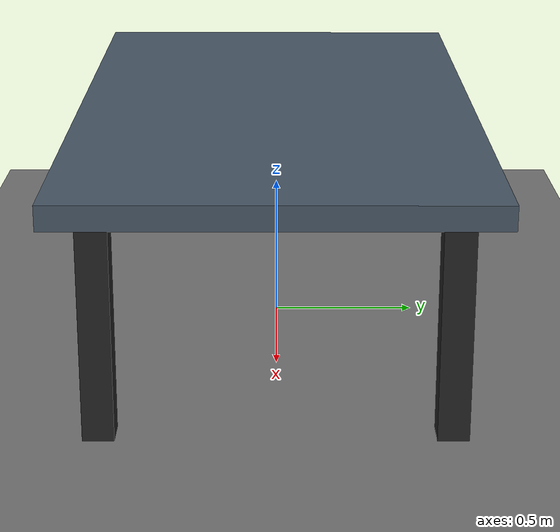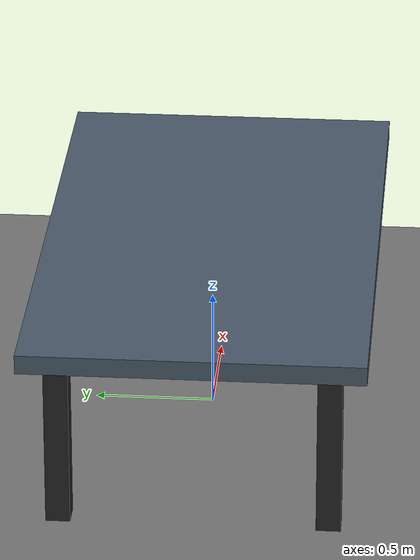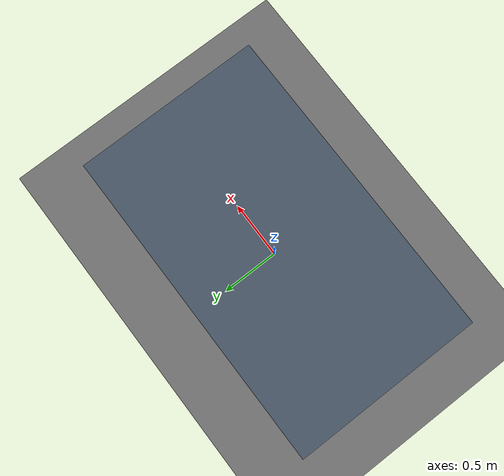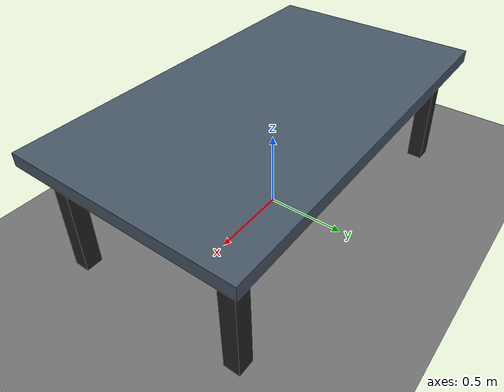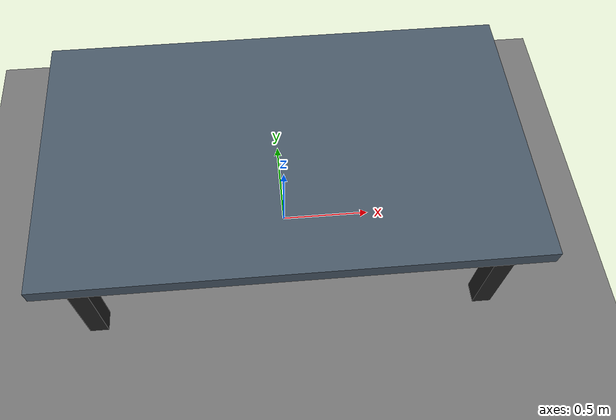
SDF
<?xml version="1.0" ?>
<sdf version="1.10">

  <world name="sorting_cell_world">

    <gravity>0 0 -9.81</gravity>

    <physics name="default_physics" type="ignored">
      <max_step_size>0.001</max_step_size>
      <real_time_factor>1.0</real_time_factor>
    </physics>

    <plugin
      filename="gz-sim-physics-system"
      name="gz::sim::systems::Physics"/>

    <plugin
      filename="gz-sim-user-commands-system"
      name="gz::sim::systems::UserCommands"/>

    <plugin
      filename="gz-sim-scene-broadcaster-system"
      name="gz::sim::systems::SceneBroadcaster"/>

    <scene>
      <ambient>0.5 0.5 0.5 1</ambient>
      <background>0.8 0.8 0.8 1</background>
      <shadows>true</shadows>
    </scene>

    <light name="sun" type="directional">
      <cast_shadows>true</cast_shadows>
      <pose>0 0 10 0 0 0</pose>
      <diffuse>0.9 0.9 0.9 1</diffuse>
      <specular>0.2 0.2 0.2 1</specular>
      <direction>-0.5 0.1 -0.9</direction>
    </light>

    <model name="ground_plane">
      <static>true</static>

      <link name="ground_link">

        <collision name="ground_collision">
          <geometry>
            <plane>
              <normal>0 0 1</normal>
              <size>20 20</size>
            </plane>
          </geometry>
        </collision>

        <visual name="ground_visual">
          <geometry>
            <plane>
              <normal>0 0 1</normal>
              <size>20 20</size>
            </plane>
          </geometry>

          <material>
            <ambient>0.25 0.25 0.25 1</ambient>
            <diffuse>0.45 0.45 0.45 1</diffuse>
            <specular>0.05 0.05 0.05 1</specular>
          </material>
        </visual>

      </link>
    </model>
    <!-- Worktable                                                  -->

    <model name="work_table">

      <!-- The table is fixed and cannot fall or move -->
      <static>true</static>

      <link name="table_link">

        <!-- ================= Tabletop ================= -->

        <collision name="tabletop_collision">
          <pose>0 0 0.76 0 0 0</pose>

          <geometry>
            <box>
              <size>2.40 1.40 0.08</size>
            </box>
          </geometry>
        </collision>

        <visual name="tabletop_visual">
          <pose>0 0 0.76 0 0 0</pose>

          <geometry>
            <box>
              <size>2.40 1.40 0.08</size>
            </box>
          </geometry>

          <material>
            <ambient>0.18 0.22 0.26 1</ambient>
            <diffuse>0.28 0.34 0.40 1</diffuse>
            <specular>0.20 0.20 0.20 1</specular>
          </material>
        </visual>

        <!-- ================= Front-left leg ================= -->

        <collision name="front_left_leg_collision">
          <pose>1.05 0.55 0.36 0 0 0</pose>

          <geometry>
            <box>
              <size>0.10 0.10 0.72</size>
            </box>
          </geometry>
        </collision>

        <visual name="front_left_leg_visual">
          <pose>1.05 0.55 0.36 0 0 0</pose>

          <geometry>
            <box>
              <size>0.10 0.10 0.72</size>
            </box>
          </geometry>

          <material>
            <ambient>0.08 0.08 0.08 1</ambient>
            <diffuse>0.14 0.14 0.14 1</diffuse>
          </material>
        </visual>

        <!-- ================= Front-right leg ================= -->

        <collision name="front_right_leg_collision">
          <pose>1.05 -0.55 0.36 0 0 0</pose>

          <geometry>
            <box>
              <size>0.10 0.10 0.72</size>
            </box>
          </geometry>
        </collision>

        <visual name="front_right_leg_visual">
          <pose>1.05 -0.55 0.36 0 0 0</pose>

          <geometry>
            <box>
              <size>0.10 0.10 0.72</size>
            </box>
          </geometry>

          <material>
            <ambient>0.08 0.08 0.08 1</ambient>
            <diffuse>0.14 0.14 0.14 1</diffuse>
          </material>
        </visual>

        <!-- ================= Rear-left leg ================= -->

        <collision name="rear_left_leg_collision">
          <pose>-1.05 0.55 0.36 0 0 0</pose>

          <geometry>
            <box>
              <size>0.10 0.10 0.72</size>
            </box>
          </geometry>
        </collision>

        <visual name="rear_left_leg_visual">
          <pose>-1.05 0.55 0.36 0 0 0</pose>

          <geometry>
            <box>
              <size>0.10 0.10 0.72</size>
            </box>
          </geometry>

          <material>
            <ambient>0.08 0.08 0.08 1</ambient>
            <diffuse>0.14 0.14 0.14 1</diffuse>
          </material>
        </visual>

        <!-- ================= Rear-right leg ================= -->

        <collision name="rear_right_leg_collision">
          <pose>-1.05 -0.55 0.36 0 0 0</pose>

          <geometry>
            <box>
              <size>0.10 0.10 0.72</size>
            </box>
          </geometry>
        </collision>

        <visual name="rear_right_leg_visual">
          <pose>-1.05 -0.55 0.36 0 0 0</pose>

          <geometry>
            <box>
              <size>0.10 0.10 0.72</size>
            </box>
          </geometry>

          <material>
            <ambient>0.08 0.08 0.08 1</ambient>
            <diffuse>0.14 0.14 0.14 1</diffuse>
          </material>
        </visual>

      </link>

    </model>
  </world>

</sdf>
